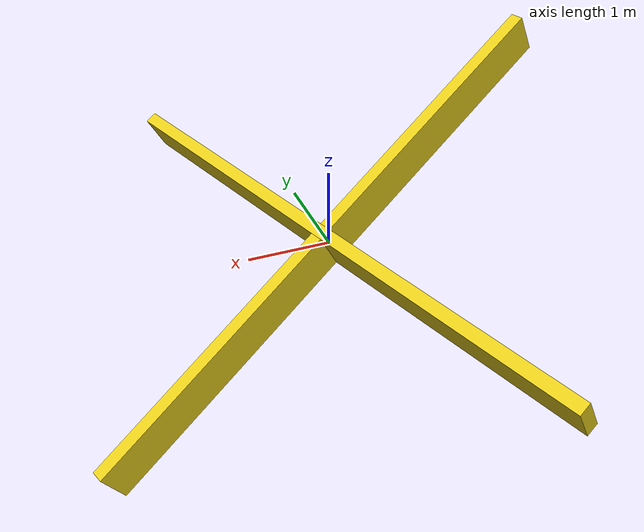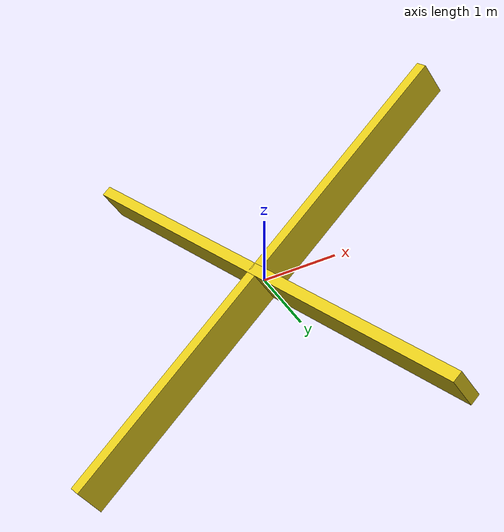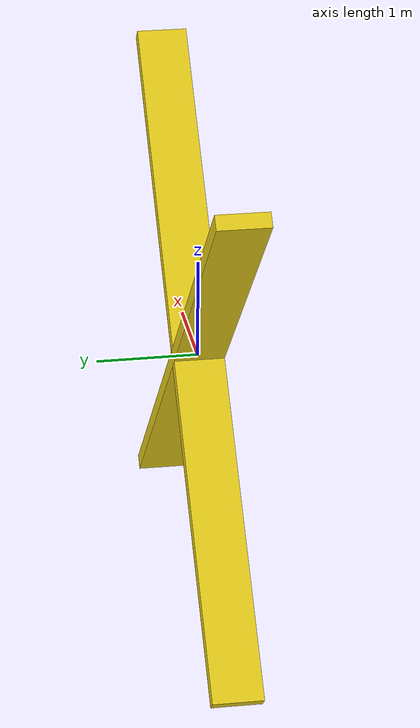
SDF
<?xml version="1.0"?>
<sdf version="1.8">
<model name="rotating_blades">
  <static>false</static>
  <link name="link">
    <gravity>false</gravity>
    <inertial>
      <mass>8</mass>
      <inertia>
        <ixx>4</ixx><iyy>4</iyy><izz>4</izz>
        <ixy>0</ixy><ixz>0</ixz><iyz>0</iyz>
      </inertia>
    </inertial>

    <collision name="arm_a_collision">
      <pose>0 0 0 0 0.785398 0</pose>
      <geometry>
        <box>
          <size>7 0.5 0.15</size>
        </box>
      </geometry>
    </collision>
    <visual name="arm_a_visual">
      <cast_shadows>false</cast_shadows>
      <pose>0 0 0 0 0.785398 0</pose>
      <geometry>
        <box>
          <size>7 0.5 0.15</size>
        </box>
      </geometry>
      <material>
        <ambient>0.85 0.75 0.05 1</ambient>
        <diffuse>0.9 0.8 0.1 1</diffuse>
        <specular>0.3 0.3 0.3 1</specular>
      </material>
    </visual>

    <collision name="arm_b_collision">
      <pose>0 0 0 0 -0.785398 0</pose>
      <geometry>
        <box>
          <size>7 0.5 0.15</size>
        </box>
      </geometry>
    </collision>
    <visual name="arm_b_visual">
      <cast_shadows>false</cast_shadows>
      <pose>0 0 0 0 -0.785398 0</pose>
      <geometry>
        <box>
          <size>7 0.5 0.15</size>
        </box>
      </geometry>
      <material>
        <ambient>0.85 0.75 0.05 1</ambient>
        <diffuse>0.9 0.8 0.1 1</diffuse>
        <specular>0.3 0.3 0.3 1</specular>
      </material>
    </visual>
  </link>
</model>
</sdf>
